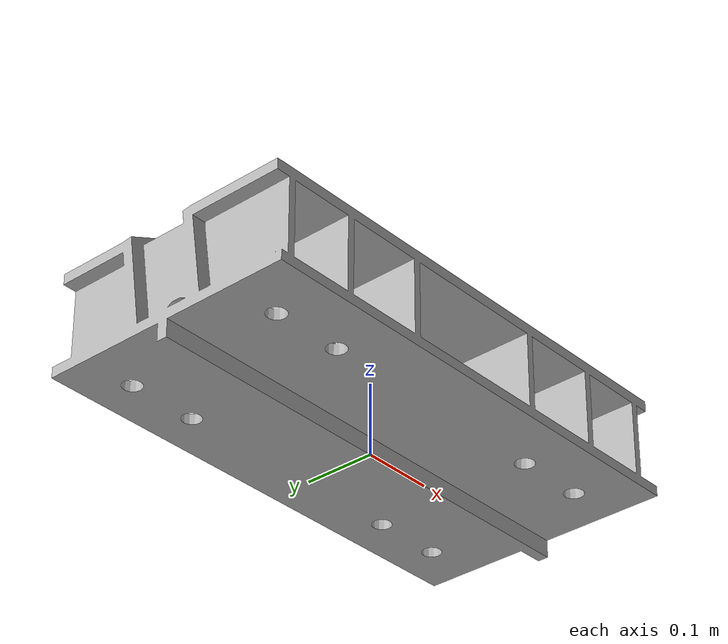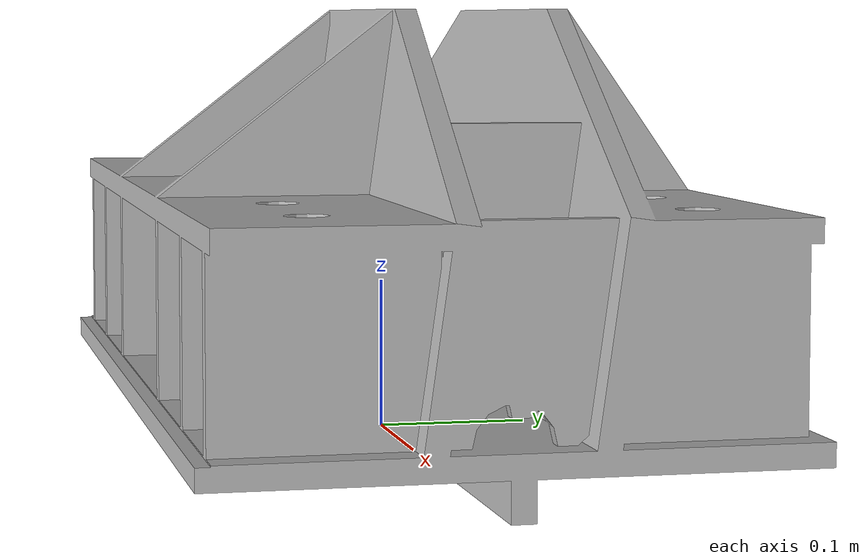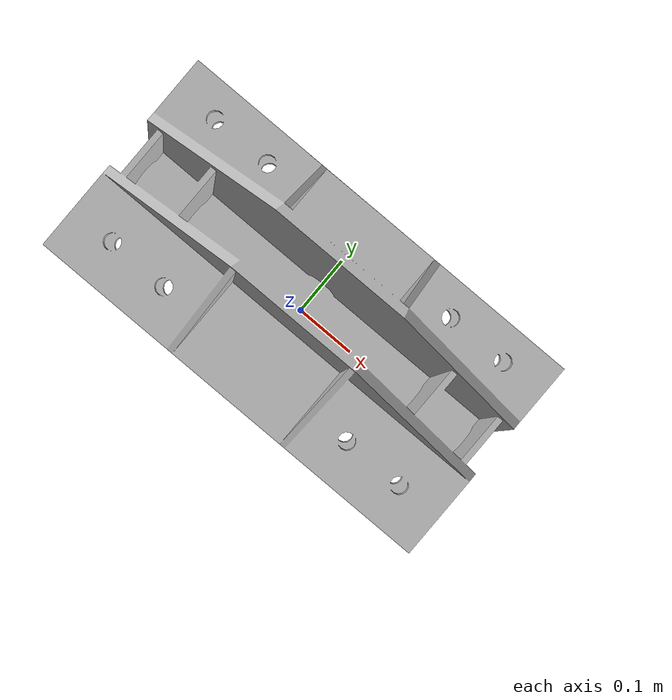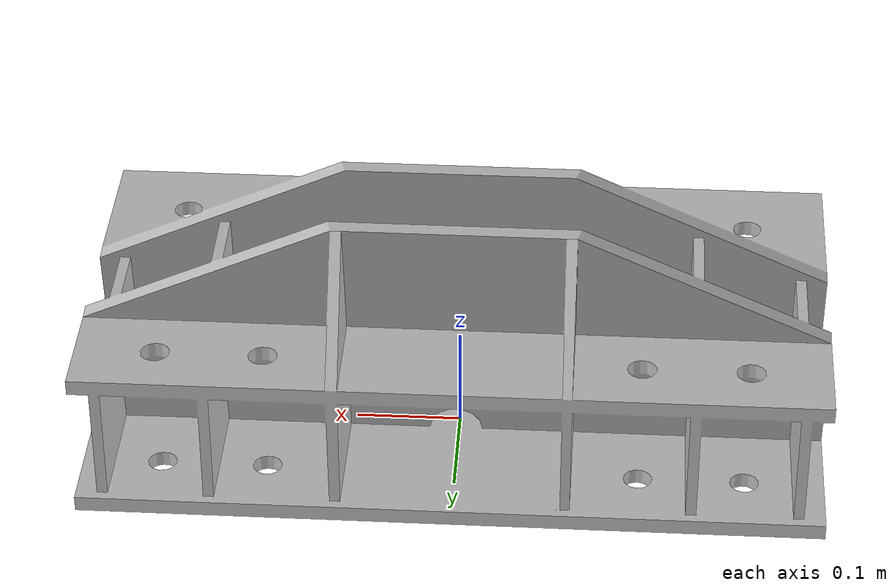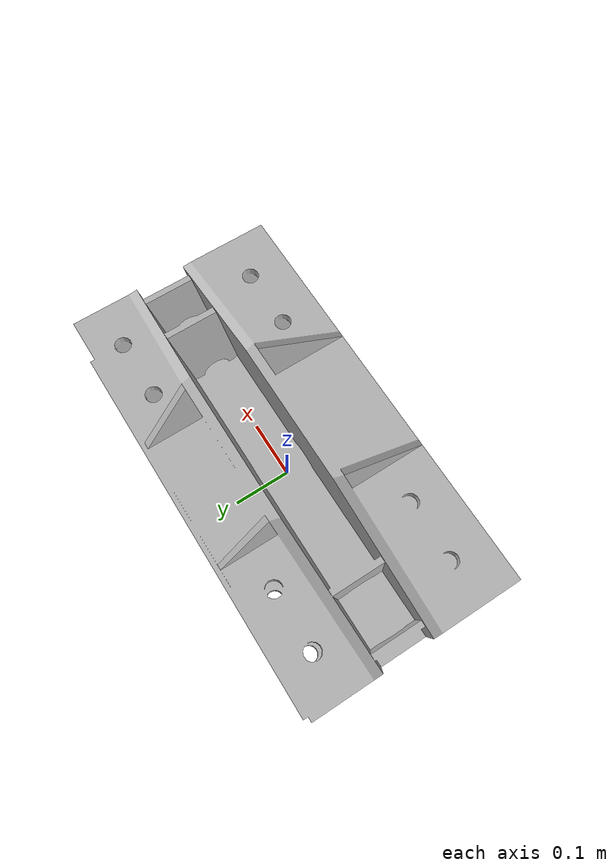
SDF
<?xml version='1.0'?>
<sdf version='1.4'>
  <model name="FGAG1002_SOPORTE">
 <static>false</static>
 <link name="mesh_link">
	<inertial>
            <mass>100.0</mass>
 	</inertial>
        <visual name="visual">
        <geometry>
            <mesh><uri>model://FGAG1002_SOPORTE/meshes/FGAG1002_SOPORTE.stl</uri></mesh>
          </geometry>
        </visual>
        <collision name="collision">
          <geometry>
            <mesh><uri>model://FGAG1002_SOPORTE/meshes/FGAG1002_SOPORTE.stl</uri></mesh>
          </geometry>
        </collision>
      </link>
  </model>
</sdf>
